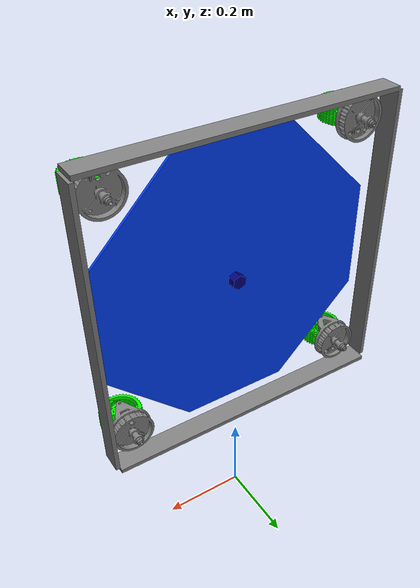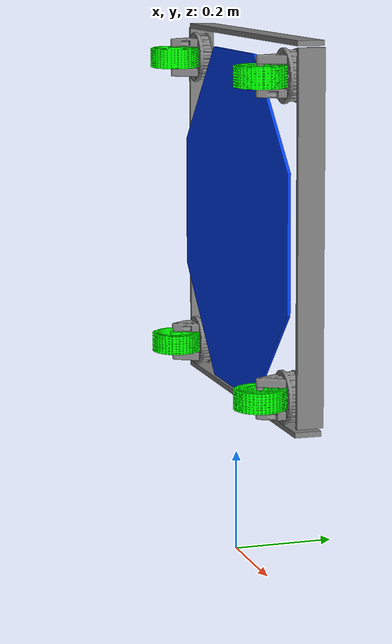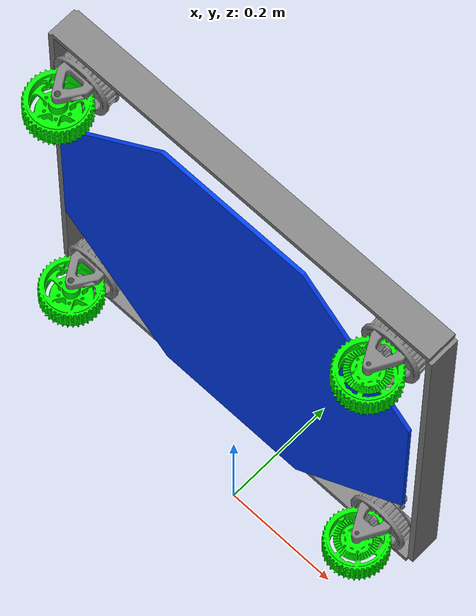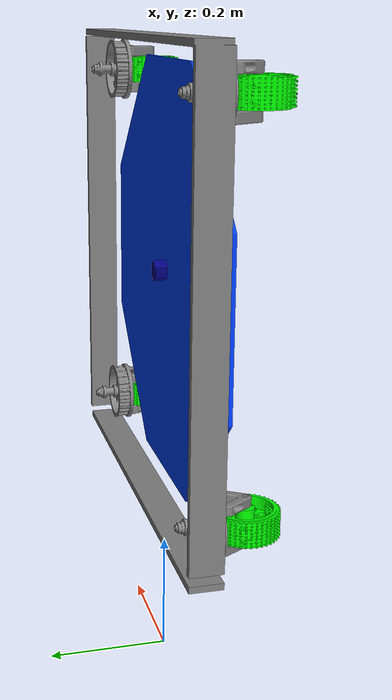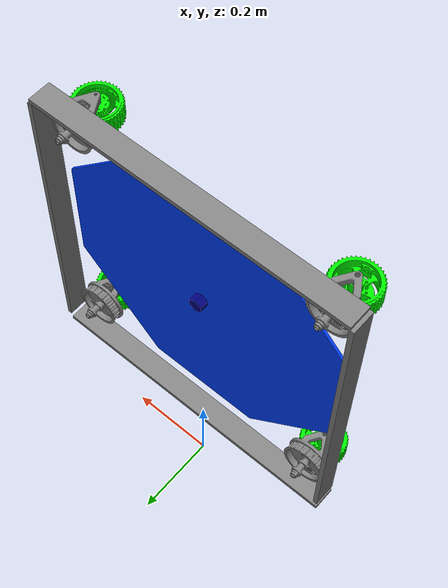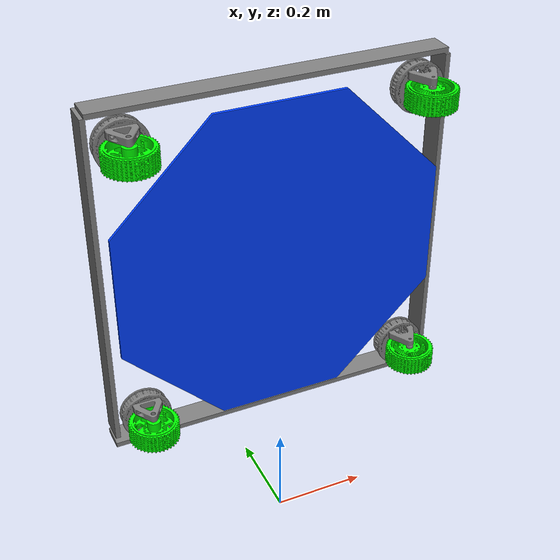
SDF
<?xml version="1.0" encoding="utf-8"?>
<sdf version="1.5">
  <model name="SimBot2024">
    <pose>0 0 0.664764464938621 0 0 0</pose>

    <link name="Body">
      <gravity>1</gravity>
      <self_collide>0</self_collide>
      <pose>0.912457940108451 0.664764464938621 0.669622619640251 0 0 0</pose>
      <must_be_base_link>1</must_be_base_link>
      <velocity_decay>
        <linear>0</linear>
        <angular>0</angular>
      </velocity_decay>
      <inertial>
        <mass>150</mass>
        <pose>-0.892994123738397 -0.386786244018043 -0.40364125979582 0 0 0</pose>
      </inertial>
      <collision name="Body_collision">
        <pose>0 0 0 0 0 0</pose>
        <geometry>
          <mesh>
            <scale>1 1 1</scale>
            <uri>model://SimBot2024/meshes/Body_col.STL</uri>
          </mesh>
        </geometry>
        <surface>
          <contact>
            <ode />
          </contact>
          <friction>
            <ode>
              <mu>0</mu>
              <mu2>0</mu2>
            </ode>
          </friction>
        </surface>
      </collision>
      <visual name="Body_visual">
        <pose>0 0 0 0 0 0</pose>
        <material>
          <ambient>0.501960784313725 0.501960784313725 0.501960784313725 1</ambient>
          <diffuse>0.501960784313725 0.501960784313725 0.501960784313725 1</diffuse>
        </material>
        <geometry>
          <mesh>
            <scale>1 1 1</scale>
            <uri>model://SimBot2024/meshes/Body.STL</uri>
          </mesh>
        </geometry>
      </visual>
      <sensor name="BodyCamera" type="camera">
        <visualize>1</visualize>
        <always_on>1</always_on>
        <pose>-0.547631076668716 -0.349114921204846 -0.400972279916409 0 0 0</pose>
        <camera name="Bodycamera">
          <horizontal_fov>1.22173047639603</horizontal_fov>
          <image>
            <width>320</width>
            <height>240</height>
          </image>
          <clip>
            <near>0.1</near>
            <far>100</far>
          </clip>
        </camera>
        <plugin name="camera1" filename="sim_camera.dll">
          <topic>~/gazebo/frc/simulator/camera/0</topic>
          <port>9000</port>
          <fps>20</fps>
          <enabled>true</enabled>
          <savepath>tmp</savepath>
          <maxframes>1</maxframes>
      </plugin>
      </sensor>
    </link>
    <link name="FRdrive">
      <gravity>1</gravity>
      <self_collide>0</self_collide>
      <pose>0.285104465187053 -0.000891877261577911 0.30432973469854 0 0 0</pose>
      <must_be_base_link>0</must_be_base_link>
      <velocity_decay>
        <linear>0</linear>
        <angular>0</angular>
      </velocity_decay>
      <inertial>
        <mass>1</mass>
        <pose>0 0 0 0 0 0</pose>
      </inertial>
      <visual name="FRdrive_visual">
        <pose>0.627353474921398 0.665656342200199 0.36529288494171 0 0 0</pose>
        <material>
          <ambient>0.501960784313725 0.501960784313725 0.501960784313725 1</ambient>
          <diffuse>0.501960784313725 0.501960784313725 0.501960784313725 1</diffuse>
        </material>
        <geometry>
          <mesh>
            <scale>1 1 1</scale>
            <uri>model://SimBot2024/meshes/FRdrive.STL</uri>
          </mesh>
        </geometry>
      </visual>
    </link>
    <joint name="Body-FRdrive" type="revolute">
      <parent>Body</parent>
      <child>FRdrive</child>
      <pose>-4.59233142036108E-06 -1.11022302462516E-16 -0.000609234698539962 0 0 4.71238898038469</pose>
      <axis>
        <xyz>-1 0 0</xyz>
        <dynamics>
          <damping>2</damping>
          <friction>1</friction>
        </dynamics>
      </axis>
    </joint>
    <link name="FRwheel">
      <gravity>1</gravity>
      <self_collide>0</self_collide>
      <pose>0.285099767507856 -0.0422657782960008 0.305374631380306 0 0 0</pose>
      <must_be_base_link>0</must_be_base_link>
      <velocity_decay>
        <linear>0</linear>
        <angular>0.002</angular>
      </velocity_decay>
      <inertial>
        <mass>0.123981366006225</mass>
        <pose>0 0 0 0 0 0</pose>
      </inertial>
      <collision name="FRwheel_collision">
        <pose>0.627358172600595 0.707030243234621 0.364247988259944 0 0 0</pose>
        <geometry>
          <mesh>
            <scale>1 1 1</scale>
            <uri>model://SimBot2024/meshes/FRwheel_col.STL</uri>
          </mesh>
        </geometry>
         <surface>
          <contact>
             <ode>
              <max_vel>0.1</max_vel>
              <soft_cfm>0.8</soft_cfm>
              <soft_erp>0.8</soft_erp>
              <kd>25</kd>
              <kp>1e6</kp>
              <min_depth>0.0001</min_depth>
            </ode>
          </contact>
          <friction>
            <ode>
              <mu>1</mu>
              <mu2>1</mu2>
            </ode>
          </friction>
        </surface>
      </collision>
      <visual name="FRwheel_visual">
        <pose>0.627358172600595 0.707030243234621 0.364247988259944 0 0 0</pose>
        <material>
          <ambient>0 1 0 1</ambient>
          <diffuse>0 1 0 1</diffuse>
        </material>
        <geometry>
          <mesh>
            <scale>1 1 1</scale>
            <uri>model://SimBot2024/meshes/FRwheel.STL</uri>
          </mesh>
        </geometry>
      </visual>
    </link>
    <joint name="FRdrive-FRwheel" type="revolute">
      <parent>FRdrive</parent>
      <child>FRwheel</child>
      <pose>1.25638072462353E-05 0.000114295457558033 -9.46325307005225E-08 0 4.7199209919262 6.28318530717959</pose>
      <axis>
        <xyz>1 0 0</xyz>
        <dynamics>
          <damping>1</damping>
          <friction>1</friction>
        </dynamics>
        <limit>
          <effort>25</effort>
        </limit>
      </axis>
    </joint>
    <link name="FLdrive">
      <gravity>1</gravity>
      <self_collide>0</self_collide>
      <pose>0.285096556835301 -0.000891877254056483 -0.292125757014884 0 0 0</pose>
      <must_be_base_link>0</must_be_base_link>
      <velocity_decay>
        <linear>0</linear>
        <angular>0.02</angular>
      </velocity_decay>
      <inertial>
        <mass>1</mass>
        <pose>0 0 0 0 0 0</pose>
      </inertial>
      <visual name="FLdrive_visual">
        <pose>0.62736138327315 0.665656342192677 0.961748376655134 0 0 0</pose>
        <material>
          <ambient>0.501960784313725 0.501960784313725 0.501960784313725 1</ambient>
          <diffuse>0.501960784313725 0.501960784313725 0.501960784313725 1</diffuse>
        </material>
        <geometry>
          <mesh>
            <scale>1 1 1</scale>
            <uri>model://SimBot2024/meshes/FLdrive.STL</uri>
          </mesh>
        </geometry>
      </visual>
    </link>
    <joint name="Body-FLdrive" type="revolute">
      <parent>Body</parent>
      <child>FLdrive</child>
      <pose>3.3160203279925E-06 0 -0.000609242985113667 0 0 4.71238898038469</pose>
      <axis>
        <xyz>-1 0 0</xyz>
        <dynamics>
          <damping>2</damping>
          <friction>1</friction>
        </dynamics>
        <limit>
          <effort>50</effort>
        </limit>
      </axis>
    </joint>
    <link name="FLwheel">
      <gravity>1</gravity>
      <self_collide>0</self_collide>
      <pose>0.285124814005293 -0.0422613391768113 -0.29108075611794 0 0 0</pose>
      <must_be_base_link>0</must_be_base_link>
      <velocity_decay>
        <linear>0</linear>
        <angular>0.002</angular>
      </velocity_decay>
      <inertial>
        <mass>0.123981363237597</mass>
        <pose>0 0 0 0 0 0</pose>
      </inertial>
      <collision name="FLwheel_collision">
        <pose>0.627333126103158 0.707025804115432 0.960703375758191 0 0 0</pose>
        <geometry>
          <mesh>
            <scale>1 1 1</scale>
            <uri>model://SimBot2024/meshes/FLwheel_col.STL</uri>
          </mesh>
        </geometry>
        <surface>
          <contact>
             <ode>
              <max_vel>0.1</max_vel>
              <soft_cfm>0.8</soft_cfm>
              <soft_erp>0.8</soft_erp>
              <kd>25</kd>
              <kp>1e6</kp>
              <min_depth>0.001</min_depth>
            </ode>
          </contact>
          <friction>
            <ode>
              <mu>1</mu>
              <mu2>1</mu2>
            </ode>
          </friction>
        </surface>
      </collision>
      <visual name="FLwheel_visual">
        <pose>0.627333126103158 0.707025804115432 0.960703375758191 0 0 0</pose>
        <material>
          <ambient>0 1 0 1</ambient>
          <diffuse>0 1 0 1</diffuse>
        </material>
        <geometry>
          <mesh>
            <scale>1 1 1</scale>
            <uri>model://SimBot2024/meshes/FLwheel.STL</uri>
          </mesh>
        </geometry>
      </visual>
    </link>
    <joint name="FLdrive-FLwheel" type="revolute">
      <parent>FLdrive</parent>
      <child>FLwheel</child>
      <pose>-3.39534051447821E-05 0.000109856338369019 -1.84997502095108E-07 0 4.71783749638596 5.40646336552239E-16</pose>
      <axis>
        <xyz>1 0 0</xyz>
        <dynamics>
          <damping>2</damping>
          <friction>1</friction>
        </dynamics>
      </axis>
    </joint>
    <link name="BRdrive">
      <gravity>1</gravity>
      <self_collide>0</self_collide>
      <pose>-0.292738710749348 -0.000891875992105717 0.303111257451075 0 0 0</pose>
      <must_be_base_link>0</must_be_base_link>
      <velocity_decay>
        <linear>0</linear>
        <angular>0.02</angular>
      </velocity_decay>
      <inertial>
        <mass>1</mass>
        <pose>0 0 0 0 0 0</pose>
      </inertial>
      <visual name="BRdrive_visual">
        <pose>1.2051966508578 0.665656340930726 0.366511362189176 0 0 0</pose>
        <material>
          <ambient>0.501960784313725 0.501960784313725 0.501960784313725 1</ambient>
          <diffuse>0.501960784313725 0.501960784313725 0.501960784313725 1</diffuse>
        </material>
        <geometry>
          <mesh>
            <scale>1 1 1</scale>
            <uri>model://SimBot2024/meshes/BRdrive.STL</uri>
          </mesh>
        </geometry>
      </visual>
    </link>
    <joint name="Body-BRdrive" type="revolute">
      <parent>Body</parent>
      <child>BRdrive</child>
      <pose>3.7107493495725E-06 1.11022302462516E-16 0.000609242548921973 0 0 4.71238898038469</pose>
      <axis>
        <xyz>-1 0 0</xyz>
        <dynamics>
          <damping>2</damping>
          <friction>1</friction>
        </dynamics>
      </axis>
    </joint>
    <link name="BRwheel">
      <gravity>1</gravity>
      <self_collide>0</self_collide>
      <pose>-0.29273249879448 -0.042265778296819 0.302066370684938 0 0 0</pose>
      <must_be_base_link>0</must_be_base_link>
      <velocity_decay>
        <linear>0</linear>
        <angular>0.002</angular>
      </velocity_decay>
      <inertial>
        <mass>0.123981364545111</mass>
        <pose>0 0 0 0 0 0</pose>
      </inertial>
      <collision name="BRwheel_collision">
        <pose>1.20519043890293 0.70703024323544 0.367556248955313 0 0 0</pose>
        <geometry>
          <mesh>
            <scale>1 1 1</scale>
            <uri>model://SimBot2024/meshes/BRwheel_col.STL</uri>
          </mesh>
        </geometry>
        <surface>
          <contact>
            <ode>
              <max_vel>0.1</max_vel>
              <soft_cfm>0.8</soft_cfm>
              <soft_erp>0.8</soft_erp>
              <kd>25</kd>
              <kp>1e6</kp>
              <min_depth>0.0001</min_depth>
            </ode>
          </contact>
          <friction>
            <ode>
              <mu>1</mu>
              <mu2>1</mu2>
            </ode>
          </friction>
        </surface>
      </collision>
      <visual name="BRwheel_visual">
        <pose>1.20519043890293 0.70703024323544 0.367556248955313 0 0 0</pose>
        <material>
          <ambient>0 1 0 1</ambient>
          <diffuse>0 1 0 1</diffuse>
        </material>
        <geometry>
          <mesh>
            <scale>1 1 1</scale>
            <uri>model://SimBot2024/meshes/BRwheel.STL</uri>
          </mesh>
        </geometry>
      </visual>
    </link>
    <joint name="BRdrive-BRwheel" type="revolute">
      <parent>BRdrive</parent>
      <child>BRwheel</child>
      <pose>-1.256393041138E-05 0.000114295458376379 7.64349053494762E-08 0 1.56471272398399 3.14159265358979</pose>
      <axis>
        <xyz>-1 0 0</xyz>
        <dynamics>
          <damping>2</damping>
          <friction>1</friction>
        </dynamics>
      </axis>
    </joint>
    <link name="BLdrive">
      <gravity>1</gravity>
      <self_collide>0</self_collide>
      <pose>-0.292739593177212 -0.000891875993563773 -0.293344236536098 0 0 0</pose>
      <must_be_base_link>0</must_be_base_link>
      <velocity_decay>
        <linear>0</linear>
        <angular>0.02</angular>
      </velocity_decay>
      <inertial>
        <mass>1</mass>
        <pose>0 0 0 0 0 0</pose>
      </inertial>
      <visual name="BLdrive_visual">
        <pose>1.20519753328566 0.665656340932185 0.962966856176349 0 0 0</pose>
        <material>
          <ambient>0.501960784313725 0.501960784313725 0.501960784313725 1</ambient>
          <diffuse>0.501960784313725 0.501960784313725 0.501960784313725 1</diffuse>
        </material>
        <geometry>
          <mesh>
            <scale>1 1 1</scale>
            <uri>model://SimBot2024/meshes/BLdrive.STL</uri>
          </mesh>
        </geometry>
      </visual>
    </link>
    <joint name="Body-BLdrive" type="revolute">
      <parent>Body</parent>
      <child>BLdrive</child>
      <pose>4.59317720657992E-06 3.33066907387547E-16 0.000609236536125213 0 6.28318530717956 4.71238898038472</pose>
      <axis>
        <xyz>-1 0 0</xyz>
        <dynamics>
          <damping>2</damping>
          <friction>1</friction>
        </dynamics>
      </axis>
    </joint>
    <link name="BLwheel">
      <gravity>1</gravity>
      <self_collide>0</self_collide>
      <pose>-0.292734894652229 -0.042265778296026 -0.294389131380278 0 0 0</pose>
      <must_be_base_link>0</must_be_base_link>
      <velocity_decay>
        <linear>0</linear>
        <angular>0.002</angular>
      </velocity_decay>
      <inertial>
        <mass>0.123981366006225</mass>
        <pose>0 0 0 0 0 0</pose>
      </inertial>
      <collision name="BLwheel_collision">
        <pose>1.20519283476068 0.707030243234647 0.964011751020529 0 0 0</pose>
        <geometry>
          <mesh>
            <scale>1 1 1</scale>
            <uri>model://SimBot2024/meshes/BLwheel_col.STL</uri>
          </mesh>
        </geometry>
        <surface>
          <contact>
             <ode>
              <max_vel>0.1</max_vel>
              <soft_cfm>0.8</soft_cfm>
              <soft_erp>0.8</soft_erp>
              <kd>25</kd>
              <kp>1e6</kp>
              <min_depth>0.0001</min_depth>
            </ode>
          </contact>
          <friction>
            <ode>
              <mu>1</mu>
              <mu2>1</mu2>
            </ode>
          </friction>
        </surface>
      </collision>
      <visual name="BLwheel_visual">
        <pose>1.20519283476068 0.707030243234647 0.964011751020529 0 0 0</pose>
        <material>
          <ambient>0 1 0 1</ambient>
          <diffuse>0 1 0 1</diffuse>
        </material>
        <geometry>
          <mesh>
            <scale>1 1 1</scale>
            <uri>model://SimBot2024/meshes/BLwheel.STL</uri>
          </mesh>
        </geometry>
      </visual>
    </link>
    <joint name="BLdrive-BLwheel" type="revolute">
      <parent>BLdrive</parent>
      <child>BLwheel</child>
      <pose>-1.25638072465684E-05 0.000114295457558478 9.46325305895002E-08 0 1.56326431525336 3.14159265358982</pose>
      <axis>
        <xyz>-1 0 0</xyz>
        <dynamics>
          <damping>1</damping>
          <friction>1</friction>
        </dynamics>
      </axis>
    </joint>
    <link name="gyro">
      <gravity>1</gravity>
      <self_collide>0</self_collide>
      <pose>0.00239033409729017 0.00999999999999934 0.00725534380777826 0 0 0</pose>
      <must_be_base_link>0</must_be_base_link>
      <velocity_decay>
        <linear>0</linear>
        <angular>0</angular>
      </velocity_decay>
      <inertial>
        <mass>0.0149162507870566</mass>
        <pose>0 0 0 0 0 0</pose>
      </inertial>
      <visual name="gyro_visual">
        <pose>0.910067606011161 0.654764464938621 0.662367275832473 0 0 0</pose>
        <material>
          <ambient>0 0 0.501960784313725 1</ambient>
          <diffuse>0 0 0.501960784313725 1</diffuse>
        </material>
        <geometry>
          <mesh>
            <scale>1 1 1</scale>
            <uri>model://SimBot2024/meshes/gyro.STL</uri>
          </mesh>
        </geometry>
      </visual>
    </link>
    <joint name="Body-gyro" type="fixed">
      <parent>Body</parent>
      <child>gyro</child>
      <pose>-0.0237573955480299 0.292474543733779 0.00156542555178252 0 0 0</pose>
      <axis>
        <xyz>0 1 0</xyz>
      </axis>
    </joint>
    <link name="CircuitBoard">
      <gravity>1</gravity>
      <self_collide>0</self_collide>
      <pose>0 -0.00317499999999993 0 0 0 0</pose>
      <must_be_base_link>0</must_be_base_link>
      <velocity_decay>
        <linear>0</linear>
        <angular>0</angular>
      </velocity_decay>
      <inertial>
        <mass>2.30930602653999</mass>
        <pose>0 0 0 0 0 0</pose>
      </inertial>
      <collision name="CircuitBoard_collision">
        <pose>0.912457940108451 0.667939464938621 0.669622619640251 0 0 0</pose>
        <geometry>
          <mesh>
            <scale>1 1 1</scale>
            <uri>model://SimBot2024/meshes/CircuitBoard_col.STL</uri>
          </mesh>
        </geometry>
        <surface>
          <contact>
            <ode />
          </contact>
          <friction>
            <ode>
              <mu>0</mu>
              <mu2>0</mu2>
            </ode>
          </friction>
        </surface>
      </collision>
      <visual name="CircuitBoard_visual">
        <pose>0.912457940108451 0.667939464938621 0.669622619640251 0 0 0</pose>
        <material>
          <ambient>0 0.250980392156863 1 1</ambient>
          <diffuse>0 0.250980392156863 1 1</diffuse>
        </material>
        <geometry>
          <mesh>
            <scale>1 1 1</scale>
            <uri>model://SimBot2024/meshes/CircuitBoard.STL</uri>
          </mesh>
        </geometry>
      </visual>
    </link>
    <joint name="Body-CircuitBoard" type="fixed">
      <parent>Body</parent>
      <child>CircuitBoard</child>
      <pose>-0.0213670614507397 0.2924745437338 0.00882076935956078 0 0 0</pose>
      <axis>
        <xyz>0 1 0</xyz>
      </axis>
    </joint>
   <plugin name="clock" filename="sim_clock.dll">
      <topic>~/gazebo/frc/simulator/clock</topic>
    </plugin>
    <plugin name="Body_gyro" filename="sim_gyro.dll">
      <link>Body</link>
      <topic>~/gazebo/frc/simulator/gyro/0</topic>
      <units>degrees</units>
      <axis>yaw</axis>
    </plugin>
    <plugin name="Frame-FL-drive_motor" filename="sim_motor.dll">
      <joint>FLdrive-FLwheel</joint>
      <topic>~/gazebo/frc/simulator/motor/1</topic>
      <multiplier>25</multiplier>
    </plugin>
    <plugin name="Frame-FL-drive_encoder" filename="sim_encoder.dll">
        <joint>FLdrive-FLwheel</joint>
        <topic>~/gazebo/frc/simulator/encoder/1</topic>
        <multiplier>1</multiplier>
    </plugin>
    <plugin name="Frame-FL-turn_motor" filename="sim_motor.dll">
        <joint>Body-FLdrive</joint>
        <topic>~/gazebo/frc/simulator/motor/2</topic>
        <multiplier>25</multiplier>
    </plugin>
      <plugin name="Frame-FL-turn_encoder" filename="sim_encoder.dll">
      <joint>Body-FLdrive</joint>
       <topic>~/gazebo/frc/simulator/encoder/2</topic>
      <multiplier>1</multiplier>
    </plugin>

    <plugin name="Frame-FR-drive_motor" filename="sim_motor.dll">
        <joint>FRdrive-FRwheel</joint>
        <topic>~/gazebo/frc/simulator/motor/3</topic>
        <multiplier>25</multiplier>
    </plugin>
    <plugin name="Frame-FR-drive_encoder" filename="sim_encoder.dll">
        <joint>FRdrive-FRwheel</joint>
        <topic>~/gazebo/frc/simulator/encoder/3</topic>
        <multiplier>1</multiplier>
    </plugin>
    <plugin name="Frame-FR-turn_motor" filename="sim_motor.dll">
        <joint>Body-FRdrive</joint>
        <topic>~/gazebo/frc/simulator/motor/4</topic>
        <multiplier>25</multiplier>
    </plugin>
    <plugin name="Frame-FR-turn_encoder" filename="sim_encoder.dll">
      <joint>Body-FRdrive</joint>
       <topic>~/gazebo/frc/simulator/encoder/4</topic>
      <multiplier>1</multiplier>
    </plugin>

    <plugin name="Frame-BL-drive_motor" filename="sim_motor.dll">
        <joint>BLdrive-BLwheel</joint>
        <topic>~/gazebo/frc/simulator/motor/5</topic>
        <multiplier>25</multiplier>
    </plugin>
    <plugin name="Frame-BL-drive_encoder" filename="sim_encoder.dll">
        <joint>BLdrive-BLwheel</joint>
        <topic>~/gazebo/frc/simulator/encoder/5</topic>
        <multiplier>1</multiplier>
    </plugin>
    <plugin name="Frame-BL-turn_motor" filename="sim_motor.dll">
        <joint>Body-BLdrive</joint>
        <topic>~/gazebo/frc/simulator/motor/6</topic>
        <multiplier>25</multiplier>
    </plugin>
    <plugin name="Frame-BL-turn_encoder" filename="sim_encoder.dll">
        <joint>Body-BLdrive</joint>
        <topic>~/gazebo/frc/simulator/encoder/6</topic>
        <multiplier>1</multiplier>
    </plugin>

    <plugin name="Frame-BR-drive_motor" filename="sim_motor.dll">
        <joint>BRdrive-BRwheel</joint>
        <topic>~/gazebo/frc/simulator/motor/7</topic>
        <multiplier>25</multiplier>
    </plugin>
      <plugin name="Frame-BR-drive_encoder" filename="sim_encoder.dll">
        <joint>BRdrive-BRwheel</joint>
        <topic>~/gazebo/frc/simulator/encoder/7</topic>
        <multiplier>1</multiplier>
    </plugin>
    <plugin name="Frame-BR-turn_motor" filename="sim_motor.dll">
        <joint>Body-BRdrive</joint>
        <topic>~/gazebo/frc/simulator/motor/8</topic>
        <multiplier>25</multiplier>
    </plugin>
    <plugin name="Frame-BR-turn_encoder" filename="sim_encoder.dll">
        <joint>Body-BRdrive</joint>
        <topic>~/gazebo/frc/simulator/encoder/8</topic>
        <multiplier>1</multiplier>
    </plugin>
  </model>
</sdf>
